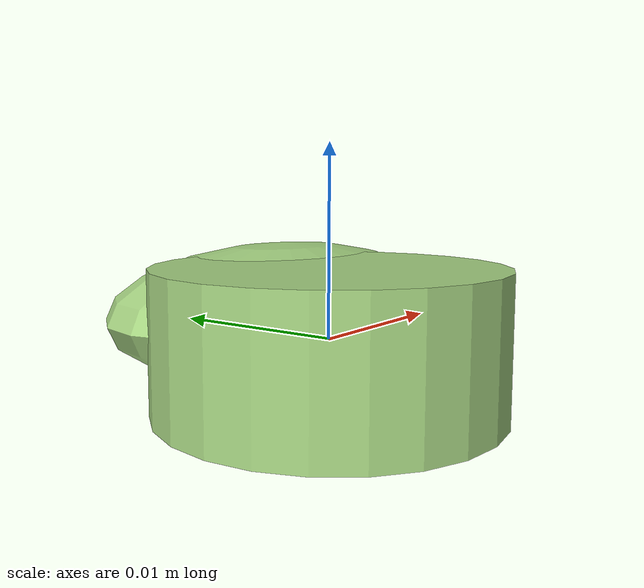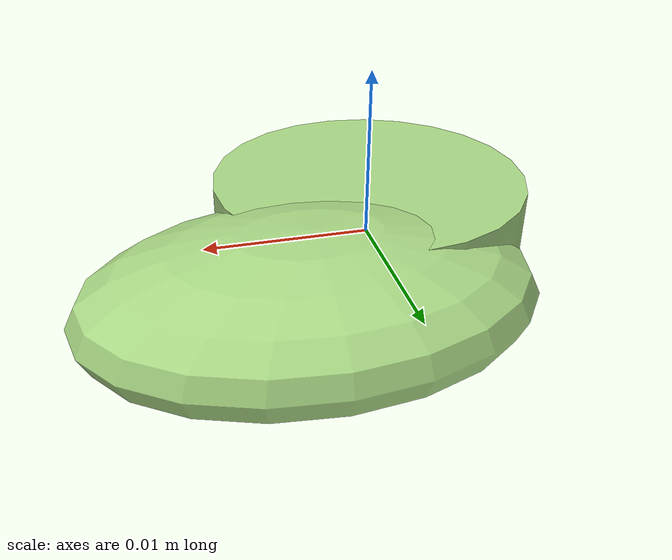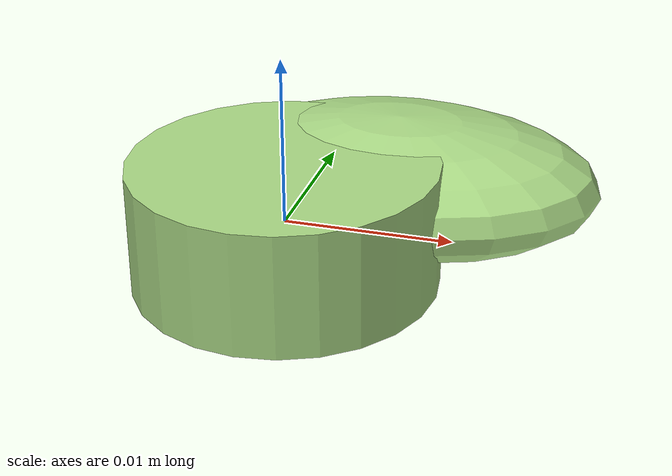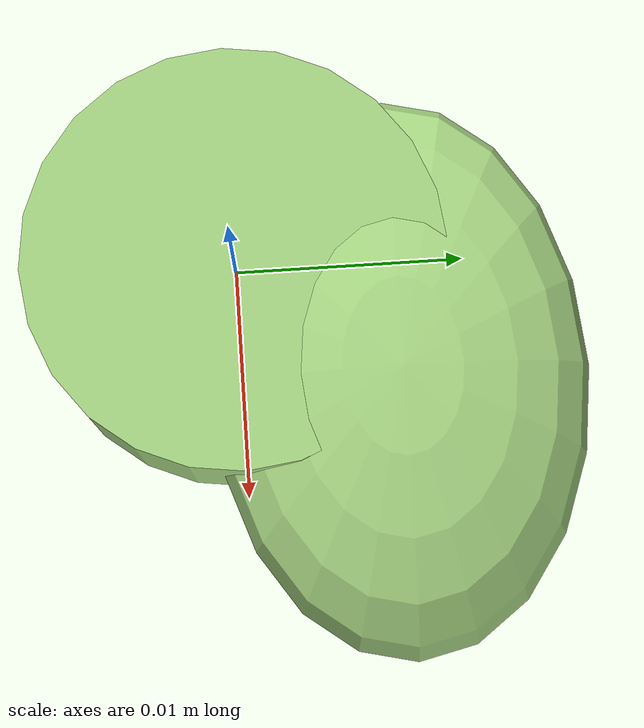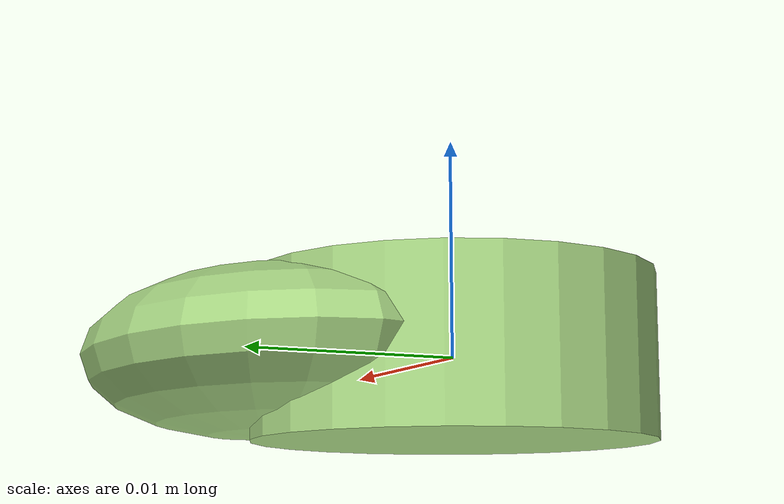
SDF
<?xml version="1.0" ?>
<!-- |    This document was autogenerated by xmacro from data/veggie_template/veggie_base.sdf.xacro  | -->
<!-- |    EDITING THIS FILE BY HAND IS NOT RECOMMENDED                                               | -->
<sdf version="1.8">
	<!-- Parameters -->
	<!-- Base -->
	<!-- Joint 0 -->
	<!-- Link 1 -->
	<!-- Joint 1 -->
	<!-- Link 2 -->
	<!-- Primitives -->
	<!-- All dimensions are half -->
	<!-- Object -->
	<model name="veggie">
		<!-- link0 -->
		<link name="link0">
			<inertial>
				<mass>0.0019717939103291826</mass>
				<inertia>
					<ixx>5.047433156819994e-08</ixx>
					<ixy>0</ixy>
					<ixz>0</ixz>
					<iyy>5.047433156819994e-08</iyy>
					<iyz>0</iyz>
					<izz>8.242888835536364e-08</izz>
				</inertia>
			</inertial>
			<visual name="link0_visual">
				<pose>0 0 0 0 0 0</pose>
				<geometry>
					<cylinder>
						<radius>0.00914374190104618</radius>
						<length>0.007506936031499506</length>
					</cylinder>
				</geometry>
				<material>
					<ambient>0.659 0.839 0.514 1</ambient>
					<diffuse>0.659 0.839 0.514 1</diffuse>
					<specular>0 0 0 0</specular>
					<emissive>0 0 0 1</emissive>
				</material>
			</visual>
			<collision name="link0_collision">
				<pose>0 0 0 0 0 0 </pose>
				<geometry>
					<cylinder>
						<radius>0.00914374190104618</radius>
						<length>0.007506936031499506</length>
					</cylinder>
				</geometry>
			</collision>
		</link>
		<!-- link1 -->
		<joint name="joint0" type="fixed">
			<pose relative_to="link0">0.0051597945436087835 0.006870215401296049 0.00044609002838971534 0.0 0.0 0.0</pose>
			<parent>link0</parent>
			<child>link1</child>
		</joint>
		<link name="link1">
			<pose relative_to="joint0">0 0 0 0 0 0</pose>
			<inertial>
				<mass>0.0016781155887883705</mass>
				<inertia>
					<ixx>2.8179893083632215e-08</ixx>
					<ixy>0</ixy>
					<ixz>0</ixz>
					<iyy>5.619913132040106e-08</iyy>
					<iyz>0</iyz>
					<izz>7.404619924688106e-08</izz>
				</inertia>
			</inertial>
			<visual name="link1_visual">
				<pose>0 0 0 0 0 0</pose>
				<geometry>
					<ellipsoid>
						<radii>0.012331003447187494 0.008280665069109431 0.003923454394369019</radii>
					</ellipsoid>
				</geometry>
				<material>
					<ambient>0.659 0.839 0.514 1</ambient>
					<diffuse>0.659 0.839 0.514 1</diffuse>
					<specular>0 0 0 0</specular>
					<emissive>0 0 0 1</emissive>
				</material>
			</visual>
			<collision name="link1_collision">
				<pose>0 0 0 0 0 0 </pose>
				<geometry>
					<ellipsoid>
						<radii>0.012331003447187494 0.008280665069109431 0.003923454394369019</radii>
					</ellipsoid>
				</geometry>
			</collision>
		</link>
		<!-- link2 -->
	</model>
</sdf>
